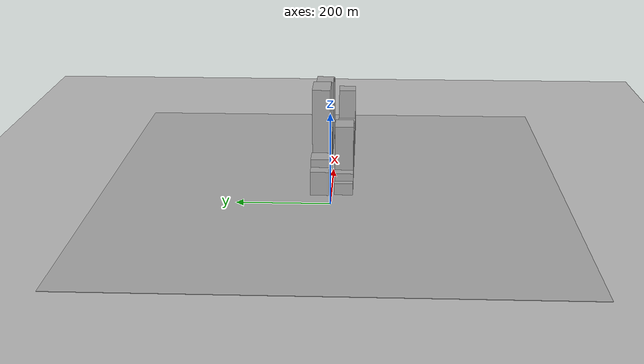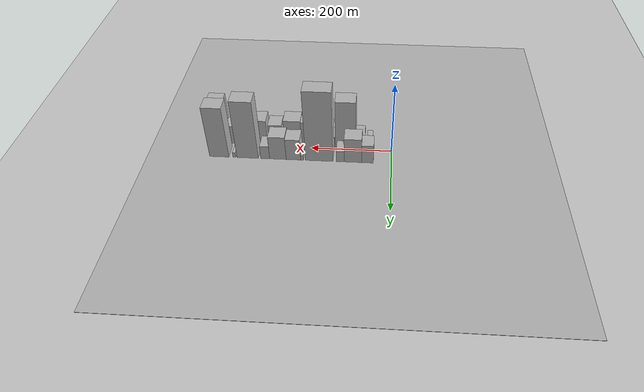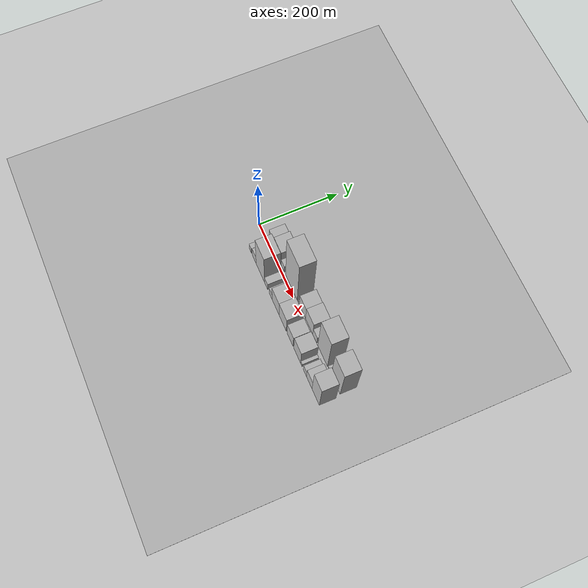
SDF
<?xml version="1.0" encoding="utf-8"?>

<sdf version="1.6">

   <world name="default">

      <gui fullscreen="0">

         <camera name="user_camera">

            <pose>-15 0 4.57585 0 0 0</pose>

            <view_controller>orbit</view_controller>

         </camera>

      </gui>

      <scene>

         <sky>

           <clouds>

             <speed>12</speed>

           </clouds>

         </sky>

         <ambient>0.4 0.4 0.4 1</ambient>

         <background>0.7 0.7 0.7 1</background>

         <shadows>1</shadows>

      </scene>

      <gravity>0 0 -9.8066</gravity>

      <magnetic_field>6e-06 2.3e-05 -4.2e-05</magnetic_field>

      <physics default="0" name="default_physics" type="ode">

         <ode>

            <solver>

               <type>quick</type>

               <iters>10</iters>

               <sor>1.0</sor>

               <use_dynamic_moi_rescaling>0</use_dynamic_moi_rescaling>

            </solver>

            <constraints>

               <cfm>0</cfm>

               <erp>0.2</erp>

               <contact_max_correcting_vel>100</contact_max_correcting_vel>

               <contact_surface_layer>0.001</contact_surface_layer>

            </constraints>

         </ode>

         <max_step_size>0.004</max_step_size>

         <real_time_factor>1</real_time_factor>

         <real_time_update_rate>250</real_time_update_rate>

      </physics>

      <light name="sun" type="directional">

         <cast_shadows>1</cast_shadows>

         <pose>0 0 10 0 0 0</pose>

         <diffuse>0.8 0.8 0.8 1</diffuse>

         <specular>0.2 0.2 0.2 1</specular>

         <attenuation>

            <range>1000</range>

            <constant>0.9</constant>

            <linear>0.01</linear>

            <quadratic>0.001</quadratic>

         </attenuation>

         <direction>-0.5 0.1 -0.9</direction>

      </light>

      <include>

         <name>ground_plane_1</name>

         <uri>model://HANNAS_ground_plane</uri>

         <pose>0 0 0  0 0 0</pose>

      </include>

      <include>

         <name>ground_plane_2</name>

         <uri>model://HANNAS_ground_plane</uri>

         <pose>100 0 0  0 0 0</pose>

      </include>

      <model name="building_1">

         <static>1</static>

         <pose frame="">58.3910 26.0000 0 0.000000 0.000000 1.570796</pose>

         <link name="link">

            <pose frame="">0 0 27.00 0 0 0</pose>

            <collision name="collision">

               <geometry>

                  <box>

                     <size>40.0000 28.7821 54.0000</size>

                  </box>

               </geometry>

               <max_contacts>10</max_contacts>

               <surface>

                  <contact>

                     <ode/>

                  </contact>

                  <bounce/>

                  <friction>

                     <torsional>

                        <ode/>

                     </torsional>

                     <ode/>

                  </friction>

               </surface>

            </collision>

            <visual name="visual">

               <cast_shadows>0</cast_shadows>

               <geometry>

                  <box>

                     <size>40.0000 28.7821 54.0000</size>

                  </box>

               </geometry>

               <material>

                  <script>

                     <uri>model://HANNAS_wall/materials/scripts</uri>

                     <uri>model://HANNAS_wall/materials/textures</uri>

                     <name>vrc/HANNAS_wall</name>

                  </script>

               </material>

            </visual>

            <self_collide>0</self_collide>

            <enable_wind>0</enable_wind>

            <kinematic>0</kinematic>

         </link>

      </model>

      <model name="building_2">

         <static>1</static>

         <pose frame="">93.8937 26.0000 0 0.000000 0.000000 1.570796</pose>

         <link name="link">

            <pose frame="">0 0 36.00 0 0 0</pose>

            <collision name="collision">

               <geometry>

                  <box>

                     <size>40.0000 42.2234 72.0000</size>

                  </box>

               </geometry>

               <max_contacts>10</max_contacts>

               <surface>

                  <contact>

                     <ode/>

                  </contact>

                  <bounce/>

                  <friction>

                     <torsional>

                        <ode/>

                     </torsional>

                     <ode/>

                  </friction>

               </surface>

            </collision>

            <visual name="visual">

               <cast_shadows>0</cast_shadows>

               <geometry>

                  <box>

                     <size>40.0000 42.2234 72.0000</size>

                  </box>

               </geometry>

               <material>

                  <script>

                     <uri>model://HANNAS_wall/materials/scripts</uri>

                     <uri>model://HANNAS_wall/materials/textures</uri>

                     <name>vrc/HANNAS_wall</name>

                  </script>

               </material>

            </visual>

            <self_collide>0</self_collide>

            <enable_wind>0</enable_wind>

            <kinematic>0</kinematic>

         </link>

      </model>

      <model name="building_3">

         <static>1</static>

         <pose frame="">124.7275 26.0000 0 0.000000 0.000000 1.570796</pose>

         <link name="link">

            <pose frame="">0 0 16.50 0 0 0</pose>

            <collision name="collision">

               <geometry>

                  <box>

                     <size>40.0000 19.4442 33.0000</size>

                  </box>

               </geometry>

               <max_contacts>10</max_contacts>

               <surface>

                  <contact>

                     <ode/>

                  </contact>

                  <bounce/>

                  <friction>

                     <torsional>

                        <ode/>

                     </torsional>

                     <ode/>

                  </friction>

               </surface>

            </collision>

            <visual name="visual">

               <cast_shadows>0</cast_shadows>

               <geometry>

                  <box>

                     <size>40.0000 19.4442 33.0000</size>

                  </box>

               </geometry>

               <material>

                  <script>

                     <uri>model://HANNAS_wall/materials/scripts</uri>

                     <uri>model://HANNAS_wall/materials/textures</uri>

                     <name>vrc/HANNAS_wall</name>

                  </script>

               </material>

            </visual>

            <self_collide>0</self_collide>

            <enable_wind>0</enable_wind>

            <kinematic>0</kinematic>

         </link>

      </model>

      <model name="building_4">

         <static>1</static>

         <pose frame="">176.0245 26.0000 0 0.000000 0.000000 1.570796</pose>

         <link name="link">

            <pose frame="">0 0 103.50 0 0 0</pose>

            <collision name="collision">

               <geometry>

                  <box>

                     <size>40.0000 67.1499 207.0000</size>

                  </box>

               </geometry>

               <max_contacts>10</max_contacts>

               <surface>

                  <contact>

                     <ode/>

                  </contact>

                  <bounce/>

                  <friction>

                     <torsional>

                        <ode/>

                     </torsional>

                     <ode/>

                  </friction>

               </surface>

            </collision>

            <visual name="visual">

               <cast_shadows>0</cast_shadows>

               <geometry>

                  <box>

                     <size>40.0000 67.1499 207.0000</size>

                  </box>

               </geometry>

               <material>

                  <script>

                     <uri>model://HANNAS_wall/materials/scripts</uri>

                     <uri>model://HANNAS_wall/materials/textures</uri>

                     <name>vrc/HANNAS_wall</name>

                  </script>

               </material>

            </visual>

            <self_collide>0</self_collide>

            <enable_wind>0</enable_wind>

            <kinematic>0</kinematic>

         </link>

      </model>

      <model name="building_5">

         <static>1</static>

         <pose frame="">217.9442 26.0000 0 0.000000 0.000000 1.570796</pose>

         <link name="link">

            <pose frame="">0 0 7.50 0 0 0</pose>

            <collision name="collision">

               <geometry>

                  <box>

                     <size>40.0000 6.6894 15.0000</size>

                  </box>

               </geometry>

               <max_contacts>10</max_contacts>

               <surface>

                  <contact>

                     <ode/>

                  </contact>

                  <bounce/>

                  <friction>

                     <torsional>

                        <ode/>

                     </torsional>

                     <ode/>

                  </friction>

               </surface>

            </collision>

            <visual name="visual">

               <cast_shadows>0</cast_shadows>

               <geometry>

                  <box>

                     <size>40.0000 6.6894 15.0000</size>

                  </box>

               </geometry>

               <material>

                  <script>

                     <uri>model://HANNAS_wall/materials/scripts</uri>

                     <uri>model://HANNAS_wall/materials/textures</uri>

                     <name>vrc/HANNAS_wall</name>

                  </script>

               </material>

            </visual>

            <self_collide>0</self_collide>

            <enable_wind>0</enable_wind>

            <kinematic>0</kinematic>

         </link>

      </model>

      <model name="building_6">

         <static>1</static>

         <pose frame="">239.1167 26.0000 0 0.000000 0.000000 1.570796</pose>

         <link name="link">

            <pose frame="">0 0 31.50 0 0 0</pose>

            <collision name="collision">

               <geometry>

                  <box>

                     <size>40.0000 35.6558 63.0000</size>

                  </box>

               </geometry>

               <max_contacts>10</max_contacts>

               <surface>

                  <contact>

                     <ode/>

                  </contact>

                  <bounce/>

                  <friction>

                     <torsional>

                        <ode/>

                     </torsional>

                     <ode/>

                  </friction>

               </surface>

            </collision>

            <visual name="visual">

               <cast_shadows>0</cast_shadows>

               <geometry>

                  <box>

                     <size>40.0000 35.6558 63.0000</size>

                  </box>

               </geometry>

               <material>

                  <script>

                     <uri>model://HANNAS_wall/materials/scripts</uri>

                     <uri>model://HANNAS_wall/materials/textures</uri>

                     <name>vrc/HANNAS_wall</name>

                  </script>

               </material>

            </visual>

            <self_collide>0</self_collide>

            <enable_wind>0</enable_wind>

            <kinematic>0</kinematic>

         </link>

      </model>

      <model name="building_7">

         <static>1</static>

         <pose frame="">277.2638 26.0000 0 0.000000 0.000000 1.570796</pose>

         <link name="link">

            <pose frame="">0 0 34.50 0 0 0</pose>

            <collision name="collision">

               <geometry>

                  <box>

                     <size>40.0000 40.6383 69.0000</size>

                  </box>

               </geometry>

               <max_contacts>10</max_contacts>

               <surface>

                  <contact>

                     <ode/>

                  </contact>

                  <bounce/>

                  <friction>

                     <torsional>

                        <ode/>

                     </torsional>

                     <ode/>

                  </friction>

               </surface>

            </collision>

            <visual name="visual">

               <cast_shadows>0</cast_shadows>

               <geometry>

                  <box>

                     <size>40.0000 40.6383 69.0000</size>

                  </box>

               </geometry>

               <material>

                  <script>

                     <uri>model://HANNAS_wall/materials/scripts</uri>

                     <uri>model://HANNAS_wall/materials/textures</uri>

                     <name>vrc/HANNAS_wall</name>

                  </script>

               </material>

            </visual>

            <self_collide>0</self_collide>

            <enable_wind>0</enable_wind>

            <kinematic>0</kinematic>

         </link>

      </model>

      <model name="building_8">

         <static>1</static>

         <pose frame="">308.6329 26.0000 0 0.000000 0.000000 1.570796</pose>

         <link name="link">

            <pose frame="">0 0 19.50 0 0 0</pose>

            <collision name="collision">

               <geometry>

                  <box>

                     <size>40.0000 22.0998 39.0000</size>

                  </box>

               </geometry>

               <max_contacts>10</max_contacts>

               <surface>

                  <contact>

                     <ode/>

                  </contact>

                  <bounce/>

                  <friction>

                     <torsional>

                        <ode/>

                     </torsional>

                     <ode/>

                  </friction>

               </surface>

            </collision>

            <visual name="visual">

               <cast_shadows>0</cast_shadows>

               <geometry>

                  <box>

                     <size>40.0000 22.0998 39.0000</size>

                  </box>

               </geometry>

               <material>

                  <script>

                     <uri>model://HANNAS_wall/materials/scripts</uri>

                     <uri>model://HANNAS_wall/materials/textures</uri>

                     <name>vrc/HANNAS_wall</name>

                  </script>

               </material>

            </visual>

            <self_collide>0</self_collide>

            <enable_wind>0</enable_wind>

            <kinematic>0</kinematic>

         </link>

      </model>

      <model name="building_9">

         <static>1</static>

         <pose frame="">351.9888 26.0000 0 0.000000 0.000000 1.570796</pose>

         <link name="link">

            <pose frame="">0 0 85.50 0 0 0</pose>

            <collision name="collision">

               <geometry>

                  <box>

                     <size>40.0000 52.6119 171.0000</size>

                  </box>

               </geometry>

               <max_contacts>10</max_contacts>

               <surface>

                  <contact>

                     <ode/>

                  </contact>

                  <bounce/>

                  <friction>

                     <torsional>

                        <ode/>

                     </torsional>

                     <ode/>

                  </friction>

               </surface>

            </collision>

            <visual name="visual">

               <cast_shadows>0</cast_shadows>

               <geometry>

                  <box>

                     <size>40.0000 52.6119 171.0000</size>

                  </box>

               </geometry>

               <material>

                  <script>

                     <uri>model://HANNAS_wall/materials/scripts</uri>

                     <uri>model://HANNAS_wall/materials/textures</uri>

                     <name>vrc/HANNAS_wall</name>

                  </script>

               </material>

            </visual>

            <self_collide>0</self_collide>

            <enable_wind>0</enable_wind>

            <kinematic>0</kinematic>

         </link>

      </model>

      <model name="building_10">

         <static>1</static>

         <pose frame="">384.8772 26.0000 0 0.000000 0.000000 1.570796</pose>

         <link name="link">

            <pose frame="">0 0 7.50 0 0 0</pose>

            <collision name="collision">

               <geometry>

                  <box>

                     <size>40.0000 7.1649 15.0000</size>

                  </box>

               </geometry>

               <max_contacts>10</max_contacts>

               <surface>

                  <contact>

                     <ode/>

                  </contact>

                  <bounce/>

                  <friction>

                     <torsional>

                        <ode/>

                     </torsional>

                     <ode/>

                  </friction>

               </surface>

            </collision>

            <visual name="visual">

               <cast_shadows>0</cast_shadows>

               <geometry>

                  <box>

                     <size>40.0000 7.1649 15.0000</size>

                  </box>

               </geometry>

               <material>

                  <script>

                     <uri>model://HANNAS_wall/materials/scripts</uri>

                     <uri>model://HANNAS_wall/materials/textures</uri>

                     <name>vrc/HANNAS_wall</name>

                  </script>

               </material>

            </visual>

            <self_collide>0</self_collide>

            <enable_wind>0</enable_wind>

            <kinematic>0</kinematic>

         </link>

      </model>

      <model name="building_11">

         <static>1</static>

         <pose frame="">422.3470 26.0000 0 0.000000 0.000000 1.570796</pose>

         <link name="link">

            <pose frame="">0 0 75.00 0 0 0</pose>

            <collision name="collision">

               <geometry>

                  <box>

                     <size>40.0000 47.7747 150.0000</size>

                  </box>

               </geometry>

               <max_contacts>10</max_contacts>

               <surface>

                  <contact>

                     <ode/>

                  </contact>

                  <bounce/>

                  <friction>

                     <torsional>

                        <ode/>

                     </torsional>

                     <ode/>

                  </friction>

               </surface>

            </collision>

            <visual name="visual">

               <cast_shadows>0</cast_shadows>

               <geometry>

                  <box>

                     <size>40.0000 47.7747 150.0000</size>

                  </box>

               </geometry>

               <material>

                  <script>

                     <uri>model://HANNAS_wall/materials/scripts</uri>

                     <uri>model://HANNAS_wall/materials/textures</uri>

                     <name>vrc/HANNAS_wall</name>

                  </script>

               </material>

            </visual>

            <self_collide>0</self_collide>

            <enable_wind>0</enable_wind>

            <kinematic>0</kinematic>

         </link>

      </model>

      <model name="building_12">

         <static>1</static>

         <pose frame="">54.6694 -26.0000 0 0.000000 0.000000 1.570796</pose>

         <link name="link">

            <pose frame="">0 0 13.50 0 0 0</pose>

            <collision name="collision">

               <geometry>

                  <box>

                     <size>40.0000 13.3388 27.0000</size>

                  </box>

               </geometry>

               <max_contacts>10</max_contacts>

               <surface>

                  <contact>

                     <ode/>

                  </contact>

                  <bounce/>

                  <friction>

                     <torsional>

                        <ode/>

                     </torsional>

                     <ode/>

                  </friction>

               </surface>

            </collision>

            <visual name="visual">

               <cast_shadows>0</cast_shadows>

               <geometry>

                  <box>

                     <size>40.0000 13.3388 27.0000</size>

                  </box>

               </geometry>

               <material>

                  <script>

                     <uri>model://HANNAS_wall/materials/scripts</uri>

                     <uri>model://HANNAS_wall/materials/textures</uri>

                     <name>vrc/HANNAS_wall</name>

                  </script>

               </material>

            </visual>

            <self_collide>0</self_collide>

            <enable_wind>0</enable_wind>

            <kinematic>0</kinematic>

         </link>

      </model>

      <model name="building_13">

         <static>1</static>

         <pose frame="">78.7368 -26.0000 0 0.000000 0.000000 1.570796</pose>

         <link name="link">

            <pose frame="">0 0 21.00 0 0 0</pose>

            <collision name="collision">

               <geometry>

                  <box>

                     <size>40.0000 22.7960 42.0000</size>

                  </box>

               </geometry>

               <max_contacts>10</max_contacts>

               <surface>

                  <contact>

                     <ode/>

                  </contact>

                  <bounce/>

                  <friction>

                     <torsional>

                        <ode/>

                     </torsional>

                     <ode/>

                  </friction>

               </surface>

            </collision>

            <visual name="visual">

               <cast_shadows>0</cast_shadows>

               <geometry>

                  <box>

                     <size>40.0000 22.7960 42.0000</size>

                  </box>

               </geometry>

               <material>

                  <script>

                     <uri>model://HANNAS_wall/materials/scripts</uri>

                     <uri>model://HANNAS_wall/materials/textures</uri>

                     <name>vrc/HANNAS_wall</name>

                  </script>

               </material>

            </visual>

            <self_collide>0</self_collide>

            <enable_wind>0</enable_wind>

            <kinematic>0</kinematic>

         </link>

      </model>

      <model name="building_14">

         <static>1</static>

         <pose frame="">115.1887 -26.0000 0 0.000000 0.000000 1.570796</pose>

         <link name="link">

            <pose frame="">0 0 70.50 0 0 0</pose>

            <collision name="collision">

               <geometry>

                  <box>

                     <size>40.0000 50.1077 141.0000</size>

                  </box>

               </geometry>

               <max_contacts>10</max_contacts>

               <surface>

                  <contact>

                     <ode/>

                  </contact>

                  <bounce/>

                  <friction>

                     <torsional>

                        <ode/>

                     </torsional>

                     <ode/>

                  </friction>

               </surface>

            </collision>

            <visual name="visual">

               <cast_shadows>0</cast_shadows>

               <geometry>

                  <box>

                     <size>40.0000 50.1077 141.0000</size>

                  </box>

               </geometry>

               <material>

                  <script>

                     <uri>model://HANNAS_wall/materials/scripts</uri>

                     <uri>model://HANNAS_wall/materials/textures</uri>

                     <name>vrc/HANNAS_wall</name>

                  </script>

               </material>

            </visual>

            <self_collide>0</self_collide>

            <enable_wind>0</enable_wind>

            <kinematic>0</kinematic>

         </link>

      </model>

      <model name="building_15">

         <static>1</static>

         <pose frame="">149.6408 -26.0000 0 0.000000 0.000000 1.570796</pose>

         <link name="link">

            <pose frame="">0 0 16.50 0 0 0</pose>

            <collision name="collision">

               <geometry>

                  <box>

                     <size>40.0000 18.7965 33.0000</size>

                  </box>

               </geometry>

               <max_contacts>10</max_contacts>

               <surface>

                  <contact>

                     <ode/>

                  </contact>

                  <bounce/>

                  <friction>

                     <torsional>

                        <ode/>

                     </torsional>

                     <ode/>

                  </friction>

               </surface>

            </collision>

            <visual name="visual">

               <cast_shadows>0</cast_shadows>

               <geometry>

                  <box>

                     <size>40.0000 18.7965 33.0000</size>

                  </box>

               </geometry>

               <material>

                  <script>

                     <uri>model://HANNAS_wall/materials/scripts</uri>

                     <uri>model://HANNAS_wall/materials/textures</uri>

                     <name>vrc/HANNAS_wall</name>

                  </script>

               </material>

            </visual>

            <self_collide>0</self_collide>

            <enable_wind>0</enable_wind>

            <kinematic>0</kinematic>

         </link>

      </model>

      <model name="building_16">

         <static>1</static>

         <pose frame="">176.4390 -26.0000 0 0.000000 0.000000 1.570796</pose>

         <link name="link">

            <pose frame="">0 0 16.50 0 0 0</pose>

            <collision name="collision">

               <geometry>

                  <box>

                     <size>40.0000 16.8000 33.0000</size>

                  </box>

               </geometry>

               <max_contacts>10</max_contacts>

               <surface>

                  <contact>

                     <ode/>

                  </contact>

                  <bounce/>

                  <friction>

                     <torsional>

                        <ode/>

                     </torsional>

                     <ode/>

                  </friction>

               </surface>

            </collision>

            <visual name="visual">

               <cast_shadows>0</cast_shadows>

               <geometry>

                  <box>

                     <size>40.0000 16.8000 33.0000</size>

                  </box>

               </geometry>

               <material>

                  <script>

                     <uri>model://HANNAS_wall/materials/scripts</uri>

                     <uri>model://HANNAS_wall/materials/textures</uri>

                     <name>vrc/HANNAS_wall</name>

                  </script>

               </material>

            </visual>

            <self_collide>0</self_collide>

            <enable_wind>0</enable_wind>

            <kinematic>0</kinematic>

         </link>

      </model>

      <model name="building_17">

         <static>1</static>

         <pose frame="">205.0907 -26.0000 0 0.000000 0.000000 1.570796</pose>

         <link name="link">

            <pose frame="">0 0 37.50 0 0 0</pose>

            <collision name="collision">

               <geometry>

                  <box>

                     <size>40.0000 40.5034 75.0000</size>

                  </box>

               </geometry>

               <max_contacts>10</max_contacts>

               <surface>

                  <contact>

                     <ode/>

                  </contact>

                  <bounce/>

                  <friction>

                     <torsional>

                        <ode/>

                     </torsional>

                     <ode/>

                  </friction>

               </surface>

            </collision>

            <visual name="visual">

               <cast_shadows>0</cast_shadows>

               <geometry>

                  <box>

                     <size>40.0000 40.5034 75.0000</size>

                  </box>

               </geometry>

               <material>

                  <script>

                     <uri>model://HANNAS_wall/materials/scripts</uri>

                     <uri>model://HANNAS_wall/materials/textures</uri>

                     <name>vrc/HANNAS_wall</name>

                  </script>

               </material>

            </visual>

            <self_collide>0</self_collide>

            <enable_wind>0</enable_wind>

            <kinematic>0</kinematic>

         </link>

      </model>

      <model name="building_18">

         <static>1</static>

         <pose frame="">246.5225 -26.0000 0 0.000000 0.000000 1.570796</pose>

         <link name="link">

            <pose frame="">0 0 39.00 0 0 0</pose>

            <collision name="collision">

               <geometry>

                  <box>

                     <size>40.0000 42.3602 78.0000</size>

                  </box>

               </geometry>

               <max_contacts>10</max_contacts>

               <surface>

                  <contact>

                     <ode/>

                  </contact>

                  <bounce/>

                  <friction>

                     <torsional>

                        <ode/>

                     </torsional>

                     <ode/>

                  </friction>

               </surface>

            </collision>

            <visual name="visual">

               <cast_shadows>0</cast_shadows>

               <geometry>

                  <box>

                     <size>40.0000 42.3602 78.0000</size>

                  </box>

               </geometry>

               <material>

                  <script>

                     <uri>model://HANNAS_wall/materials/scripts</uri>

                     <uri>model://HANNAS_wall/materials/textures</uri>

                     <name>vrc/HANNAS_wall</name>

                  </script>

               </material>

            </visual>

            <self_collide>0</self_collide>

            <enable_wind>0</enable_wind>

            <kinematic>0</kinematic>

         </link>

      </model>

      <model name="building_19">

         <static>1</static>

         <pose frame="">289.4904 -26.0000 0 0.000000 0.000000 1.570796</pose>

         <link name="link">

            <pose frame="">0 0 31.50 0 0 0</pose>

            <collision name="collision">

               <geometry>

                  <box>

                     <size>40.0000 33.5756 63.0000</size>

                  </box>

               </geometry>

               <max_contacts>10</max_contacts>

               <surface>

                  <contact>

                     <ode/>

                  </contact>

                  <bounce/>

                  <friction>

                     <torsional>

                        <ode/>

                     </torsional>

                     <ode/>

                  </friction>

               </surface>

            </collision>

            <visual name="visual">

               <cast_shadows>0</cast_shadows>

               <geometry>

                  <box>

                     <size>40.0000 33.5756 63.0000</size>

                  </box>

               </geometry>

               <material>

                  <script>

                     <uri>model://HANNAS_wall/materials/scripts</uri>

                     <uri>model://HANNAS_wall/materials/textures</uri>

                     <name>vrc/HANNAS_wall</name>

                  </script>

               </material>

            </visual>

            <self_collide>0</self_collide>

            <enable_wind>0</enable_wind>

            <kinematic>0</kinematic>

         </link>

      </model>

      <model name="building_20">

         <static>1</static>

         <pose frame="">329.3907 -26.0000 0 0.000000 0.000000 1.570796</pose>

         <link name="link">

            <pose frame="">0 0 37.50 0 0 0</pose>

            <collision name="collision">

               <geometry>

                  <box>

                     <size>40.0000 38.2250 75.0000</size>

                  </box>

               </geometry>

               <max_contacts>10</max_contacts>

               <surface>

                  <contact>

                     <ode/>

                  </contact>

                  <bounce/>

                  <friction>

                     <torsional>

                        <ode/>

                     </torsional>

                     <ode/>

                  </friction>

               </surface>

            </collision>

            <visual name="visual">

               <cast_shadows>0</cast_shadows>

               <geometry>

                  <box>

                     <size>40.0000 38.2250 75.0000</size>

                  </box>

               </geometry>

               <material>

                  <script>

                     <uri>model://HANNAS_wall/materials/scripts</uri>

                     <uri>model://HANNAS_wall/materials/textures</uri>

                     <name>vrc/HANNAS_wall</name>

                  </script>

               </material>

            </visual>

            <self_collide>0</self_collide>

            <enable_wind>0</enable_wind>

            <kinematic>0</kinematic>

         </link>

      </model>

      <model name="building_21">

         <static>1</static>

         <pose frame="">352.6039 -26.0000 0 0.000000 0.000000 1.570796</pose>

         <link name="link">

            <pose frame="">0 0 9.00 0 0 0</pose>

            <collision name="collision">

               <geometry>

                  <box>

                     <size>40.0000 8.2014 18.0000</size>

                  </box>

               </geometry>

               <max_contacts>10</max_contacts>

               <surface>

                  <contact>

                     <ode/>

                  </contact>

                  <bounce/>

                  <friction>

                     <torsional>

                        <ode/>

                     </torsional>

                     <ode/>

                  </friction>

               </surface>

            </collision>

            <visual name="visual">

               <cast_shadows>0</cast_shadows>

               <geometry>

                  <box>

                     <size>40.0000 8.2014 18.0000</size>

                  </box>

               </geometry>

               <material>

                  <script>

                     <uri>model://HANNAS_wall/materials/scripts</uri>

                     <uri>model://HANNAS_wall/materials/textures</uri>

                     <name>vrc/HANNAS_wall</name>

                  </script>

               </material>

            </visual>

            <self_collide>0</self_collide>

            <enable_wind>0</enable_wind>

            <kinematic>0</kinematic>

         </link>

      </model>

      <model name="building_22">

         <static>1</static>

         <pose frame="">372.4412 -26.0000 0 0.000000 0.000000 1.570796</pose>

         <link name="link">

            <pose frame="">0 0 16.50 0 0 0</pose>

            <collision name="collision">

               <geometry>

                  <box>

                     <size>40.0000 17.4734 33.0000</size>

                  </box>

               </geometry>

               <max_contacts>10</max_contacts>

               <surface>

                  <contact>

                     <ode/>

                  </contact>

                  <bounce/>

                  <friction>

                     <torsional>

                        <ode/>

                     </torsional>

                     <ode/>

                  </friction>

               </surface>

            </collision>

            <visual name="visual">

               <cast_shadows>0</cast_shadows>

               <geometry>

                  <box>

                     <size>40.0000 17.4734 33.0000</size>

                  </box>

               </geometry>

               <material>

                  <script>

                     <uri>model://HANNAS_wall/materials/scripts</uri>

                     <uri>model://HANNAS_wall/materials/textures</uri>

                     <name>vrc/HANNAS_wall</name>

                  </script>

               </material>

            </visual>

            <self_collide>0</self_collide>

            <enable_wind>0</enable_wind>

            <kinematic>0</kinematic>

         </link>

      </model>

      <model name="building_23">

         <static>1</static>

         <pose frame="">396.3656 -26.0000 0 0.000000 0.000000 1.570796</pose>

         <link name="link">

            <pose frame="">0 0 27.00 0 0 0</pose>

            <collision name="collision">

               <geometry>

                  <box>

                     <size>40.0000 30.3753 54.0000</size>

                  </box>

               </geometry>

               <max_contacts>10</max_contacts>

               <surface>

                  <contact>

                     <ode/>

                  </contact>

                  <bounce/>

                  <friction>

                     <torsional>

                        <ode/>

                     </torsional>

                     <ode/>

                  </friction>

               </surface>

            </collision>

            <visual name="visual">

               <cast_shadows>0</cast_shadows>

               <geometry>

                  <box>

                     <size>40.0000 30.3753 54.0000</size>

                  </box>

               </geometry>

               <material>

                  <script>

                     <uri>model://HANNAS_wall/materials/scripts</uri>

                     <uri>model://HANNAS_wall/materials/textures</uri>

                     <name>vrc/HANNAS_wall</name>

                  </script>

               </material>

            </visual>

            <self_collide>0</self_collide>

            <enable_wind>0</enable_wind>

            <kinematic>0</kinematic>

         </link>

      </model>

      <model name="building_24">

         <static>1</static>

         <pose frame="">431.2780 -26.0000 0 0.000000 0.000000 1.570796</pose>

         <link name="link">

            <pose frame="">0 0 63.00 0 0 0</pose>

            <collision name="collision">

               <geometry>

                  <box>

                     <size>40.0000 39.4497 126.0000</size>

                  </box>

               </geometry>

               <max_contacts>10</max_contacts>

               <surface>

                  <contact>

                     <ode/>

                  </contact>

                  <bounce/>

                  <friction>

                     <torsional>

                        <ode/>

                     </torsional>

                     <ode/>

                  </friction>

               </surface>

            </collision>

            <visual name="visual">

               <cast_shadows>0</cast_shadows>

               <geometry>

                  <box>

                     <size>40.0000 39.4497 126.0000</size>

                  </box>

               </geometry>

               <material>

                  <script>

                     <uri>model://HANNAS_wall/materials/scripts</uri>

                     <uri>model://HANNAS_wall/materials/textures</uri>

                     <name>vrc/HANNAS_wall</name>

                  </script>

               </material>

            </visual>

            <self_collide>0</self_collide>

            <enable_wind>0</enable_wind>

            <kinematic>0</kinematic>

         </link>

      </model>

   </world>

</sdf>

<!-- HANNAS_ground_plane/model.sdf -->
<sdf version="1.4">
<model name="HANNAS_ground_plane">
  <static>true</static>
    <link name="link">
      <collision name="collision">
        <geometry>
          <plane>
            <normal>0 0 1</normal>
            <size>1000 1000</size>
          </plane>
        </geometry>
        <surface>
          <friction>
            <ode>
              <mu>100</mu>
              <mu2>50</mu2>
            </ode>
          </friction>
        </surface>
      </collision>
      <visual name="visual">
        <cast_shadows>false</cast_shadows>
        <geometry>
          <plane>
            <normal>0 0 1</normal>
            <size>1000 1000</size>
          </plane>
        </geometry>
        <material>
          <script>
            <uri>model://HANNAS_ground_plane/materials/scripts/HANNAS_ground_plane.material</uri>
	    <uri>model://HANNAS_ground_plane/materials/textures</uri>
            <name>HANNASGroundPlane/Image</name>
          </script>
        </material>
      </visual>
    </link>
  </model>
</sdf>
